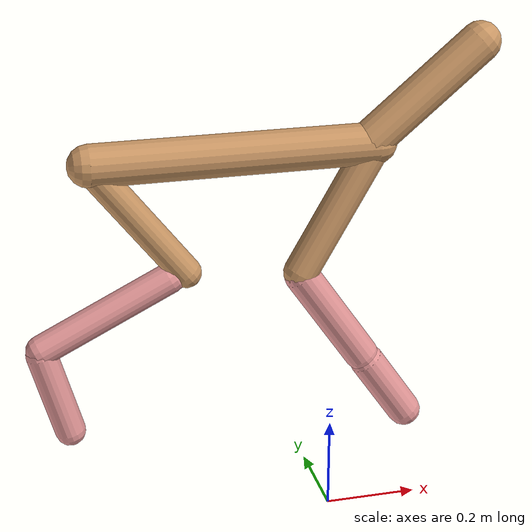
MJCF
<mujoco model="cheetah">
  <compiler angle="radian" coordinate="local" inertiafromgeom="true" settotalmass="14" />
  <default>
    <joint armature=".1" damping=".01" limited="true" solimplimit="0 .8 .03" solreflimit=".02 1" stiffness="8" />
    <geom conaffinity="0" condim="3" contype="1" friction="0.8 .1 .1" rgba="0.8 0.6 .4 1" solimp="0.0 0.8 0.01" solref="0.02 1" />
    <motor ctrllimited="true" ctrlrange="-1 1" />
  </default>
  <size nstack="300000" nuser_geom="1" />
  <option gravity="0 0 -9.81" timestep="0.01" />
  <worldbody>
    <body name="torso" pos="0.0 0.0 0.8375383724607218">
      <joint armature="0" axis="1 0 0" damping="0" limited="false" name="ignorex" pos="0 0 0" stiffness="0" type="slide" />
      <joint armature="0" axis="0 0 1" damping="0" limited="false" name="ignorez" pos="0 0 0" stiffness="0" type="slide" />
      <joint armature="0" axis="0 1 0" damping="0" limited="false" name="ignorey" pos="0 0 0" stiffness="0" type="hinge" />
      <geom fromto="-0.5 0.0 0.0 0.08519764868805846 0.0 0.0" name="torso" size="0.04339990031214333" type="capsule" />
      <geom axisangle="0 1 0 .87" name="head" pos="0.18519764868805844 0.0 0.1" size="0.04270334468595764 0.15" type="capsule" />

      <body name="bthigh" pos="-.5 0 0">
        <joint axis="0 1 0" damping="6" name="bthigh" pos="0 0 0" range="-.52 1.05" stiffness="240" type="hinge" />
        <geom axisangle="0 1 0 -3.8" name="bthigh" pos="0.09964430423959994 0.0 -0.12953759551147992" size="0.0322 0.1444166155770248" type="capsule" />
        <body name="bshin" pos="0.15928860847919987 0.0 -0.24907519102295983">
          <joint axis="0 1 0" damping="4.5" name="bshin" pos="0 0 0" range="-.785 .785" stiffness="180" type="hinge" />
          <geom axisangle="0 1 0 -2.03" name="bshin" pos="-0.13946021218201918 0.0 -0.06973010609100959" rgba="0.9 0.6 0.6 1" size="0.0322 0.14939649887278428" type="capsule" />
          <body name="bfoot" pos="-0.27892042436403836 0.0 -0.13946021218201918">
            <joint axis="0 1 0" damping="3" name="bfoot" pos="0 0 0" range="-.4 .785" stiffness="120" type="hinge" />
            <geom axisangle="0 1 0 -.27" name="bfoot" pos="0.029888255111872604 0.0 -0.0966386915283881" rgba="0.9 0.6 0.6 1" size="0.0322 0.09362180596027815" type="capsule" />
            <inertial mass="10" />
          </body>
        </body>
      </body>
      <body name="fthigh" pos="0.08519764868805846 0.0 0.0">
        <joint axis="0 1 0" damping="4.5" name="fthigh" pos="0 0 0" range="-1.5 0.8" stiffness="180" type="hinge" />
        <geom axisangle="0 1 0 .52" name="fthigh" pos="-0.07964133148936485 0.0 -0.13652799683891115" size="0.03643862480153656 0.15213452252853138" type="capsule" />
        <body name="fshin" pos="-0.1592826629787297 0.0 -0.2730559936778223">
          <joint axis="0 1 0" damping="3" name="fshin" pos="0 0 0" range="-1.2 1.1" stiffness="120" type="hinge" />
          <geom axisangle="0 1 0 -.6" name="fshin" pos="0.07392877227394273 0.0 -0.10236291545622839" rgba="0.9 0.6 0.6 1" size="0.03643862480153656 0.12125007058664906" type="capsule" />
          <body name="ffoot" pos="0.14785754454788547 0.0 -0.20472583091245677">
            <joint axis="0 1 0" damping="1.5" name="ffoot" pos="0 0 0" range="-3.1 -0.3" stiffness="60" type="hinge" />
            <geom axisangle="0 1 0 -.6" name="ffoot" pos="0.050445862270243426 0.0 -0.07847134130926756" rgba="0.9 0.6 0.6 1" size="0.03643862480153656 0.080070801330806" type="capsule" />
            <inertial mass="10" />
          </body>
        </body>
      </body>
    </body>
  </worldbody>
  <actuator>
    <motor gear="120" joint="bthigh" name="bthigh" />
    <motor gear="90" joint="bshin" name="bshin" />
    <motor gear="60" joint="bfoot" name="bfoot" />
    <motor gear="120" joint="fthigh" name="fthigh" />
    <motor gear="60" joint="fshin" name="fshin" />
    <motor gear="30" joint="ffoot" name="ffoot" />
  </actuator>
</mujoco>
